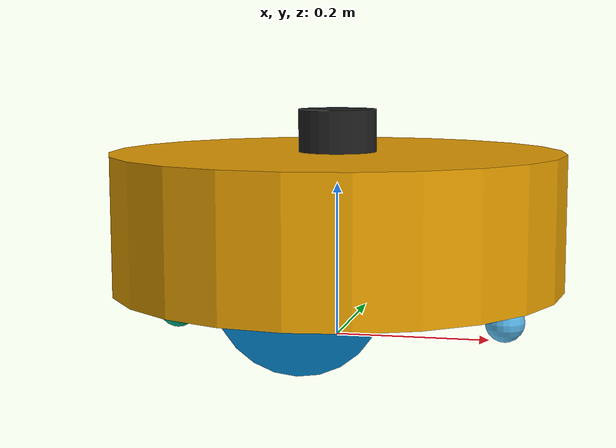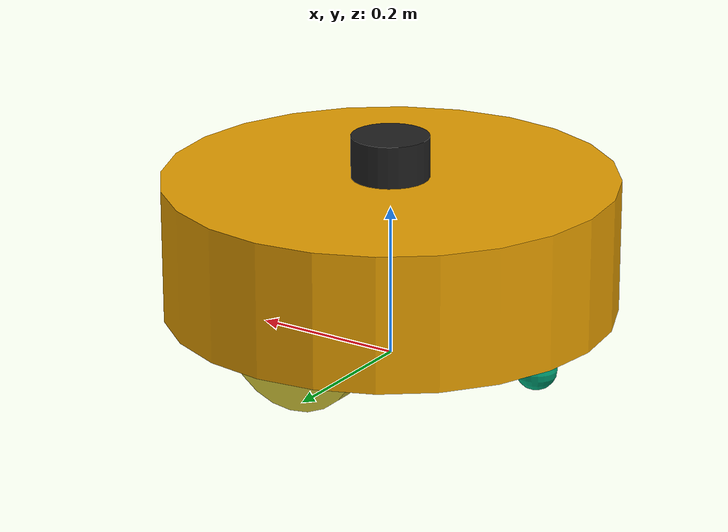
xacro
<?xml version='1.0'?>

<robot name="myrobot" xmlns:xacro="http://www.ros.org/wiki/xacro">

  <xacro:include filename="$(find m2wr_description)/urdf/materials.xacro" />
  <xacro:include filename="$(find m2wr_description)/urdf/karbot.gazebo" />
  <xacro:include filename="$(find m2wr_description)/urdf/macros.xacro" />

  <link name="base_link">
    <visual>
      <geometry>
        <cylinder length="0.176" radius="0.295051"/>
      </geometry>
      <origin rpy="0 0 0" xyz="0 0 0.153988"/>
    </visual>

    <collision name= "collison_base_link">
      <origin rpy="0 0 0" xyz="0 0 0.153988"/>
      <geometry>
        <cylinder length="0.176" radius="0.295051"/>
      </geometry>
    </collision>
    <inertial>
      <mass value="1"/>
      <origin rpy="0 0 0" xyz="0 0 0.153988"/>
      <xacro:cylinder_inertia mass="1" r="0.295051" l="0.176" />
    </inertial>
  </link>

  <link name="front_caster">
    <visual>
      <geometry>
        <sphere radius="0.025925"/>
      </geometry>
      <origin rpy="0 0 0" xyz="0 0 0"/>
    </visual>

    <collision>
      <geometry>
        <sphere radius="0.025925"/>
      </geometry>
      <surface>
        <friction>
          <ode>
            <mu>0</mu>
            <mu2>0</mu2>
            <slip1>1.0</slip1>
            <slip2>1.0</slip2>
          </ode>
        </friction>
      </surface>
    </collision>
    <inertial>
      <mass value="0.2"/>
      <inertia ixx="0.004481" ixy="0.0" ixz="0.0" iyy="0.004481" iyz="0.0" izz="0.004481"/>
    </inertial>
  </link>

  <joint name="front_caster_hinge" type="fixed">
    <parent link="base_link"/>
    <child link="front_caster"/>
    <origin xyz="0.220488 0 0.025"/>
  </joint>

  <link name="rear_caster">
    <visual>
      <geometry>
        <sphere radius="0.026925"/>
      </geometry>
      <origin rpy="0 0 0" xyz="0 0 0"/>
    </visual>

    <collision>
      <geometry>
        <sphere radius="0.025925"/>
      </geometry>
      <surface>
        <friction>
          <ode>
            <mu>0</mu>
            <mu2>0</mu2>
            <slip1>1.0</slip1>
            <slip2>1.0</slip2>
          </ode>
        </friction>
      </surface>
    </collision>
    <inertial>
      <mass value="0.2"/>
      <inertia ixx="0.001" ixy="0.0" ixz="0.0" iyy="0.001" iyz="0.0" izz="0.001"/>
    </inertial>
  </link>

  <joint name="rear_caster_hinge" type="fixed">
    <parent link="base_link"/>
    <child link="rear_caster"/>
    <origin xyz="-0.220488 0 0.026925"/>
  </joint>

  <link name="left_wheel">
    <visual>
      <geometry>
        <cylinder length=".025400" radius="0.102173"/>
      </geometry>
      <origin rpy="0 1.5707 1.5707" xyz="0 0 0"/>
    </visual>

    <collision>
      <origin rpy="0 1.5707 1.5707" xyz="0 0 0"/>
      <geometry>
        <cylinder length=".025400" radius="0.102173"/>
      </geometry>
    </collision>
    <inertial>
      <mass value="0.3"/>
      <xacro:cylinder_inertia mass="0.3" r="0.102173" l="0.0254" />
    </inertial>
  </link>

  <joint name="left_wheel_hinge" type="continuous">
    <parent link="base_link"/>
    <child link="left_wheel"/>
     <origin rpy="0 0 0" xyz="0 0.213950 0.102173"/>
     <axis xyz="0 1 0"/>
     <limit effort="10000" velocity="1000"/>
     <joint_properties damping="1.0" friction="1.0"/>
  </joint>

  <link name="right_wheel">
    <visual>
      <geometry>
        <cylinder length=".025400" radius="0.102173"/>
      </geometry>
      <origin rpy="0 1.5707 1.5707" xyz="0 0 0"/>
    </visual>

    <collision>
      <origin rpy="0 1.5707 1.5707" xyz="0 0 0"/>
      <geometry>
        <cylinder length=".025400" radius="0.102173"/>
      </geometry>
    </collision>
    <inertial>
      <mass value="0.3"/>
      <xacro:cylinder_inertia mass="0.3" r="0.102173" l="0.0254" />
    </inertial>
  </link>

  <joint name="right_wheel_hinge" type="continuous">
    <parent link="base_link"/>
    <child link="right_wheel"/>
     <origin rpy="0 0 0" xyz="0 -0.213950 0.102173"/>
    <axis xyz="0 1 0"/>
    <limit effort="10000" velocity="1000"/>
    <joint_properties damping="1.0" friction="1.0"/>
  </joint>

  <link name="lidar">
    <visual>
      <geometry>
        <cylinder length="0.055" radius="0.0508"/>
      </geometry>
      <origin rpy="0 0 0" xyz="0 0 0"/>
    </visual>

    <collision>
      <geometry>
        <cylinder length="0.055" radius="0.0508"/>
      </geometry>
    </collision>
    <inertial>
      <mass value="0.2"/>
      <xacro:cylinder_inertia mass="0.2" r="0.0508" l="0.055" />
    </inertial>
  </link>

  <joint name="lidar_hinge" type="fixed">
    <parent link="base_link"/>
    <child link="lidar"/>
    <origin xyz="0 0 0.269488"/>
  </joint>

</robot>
